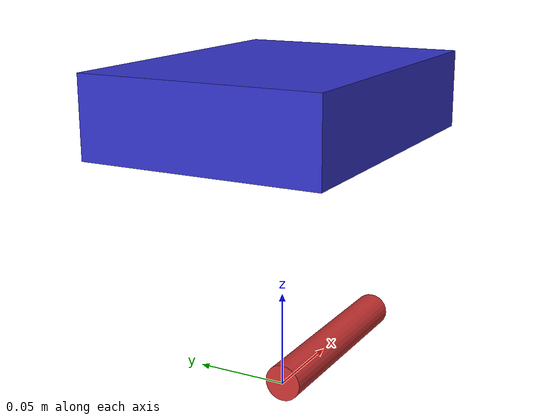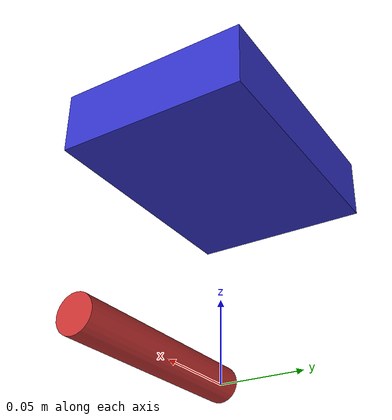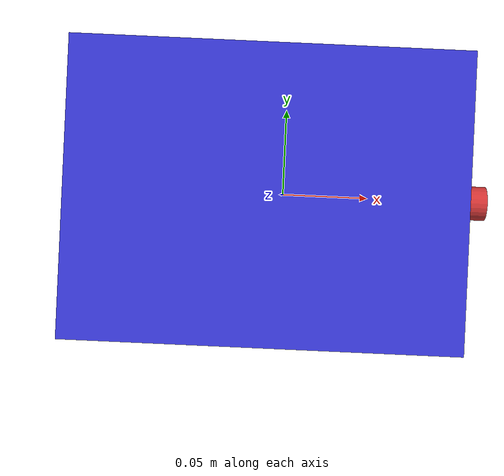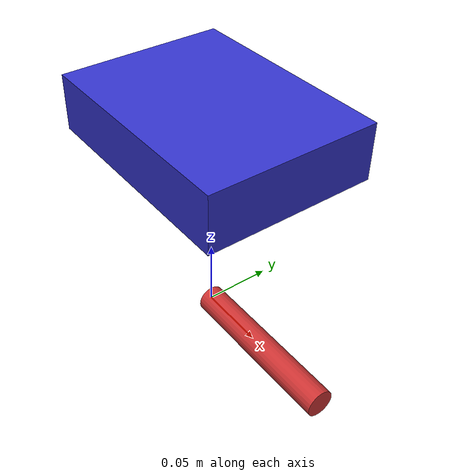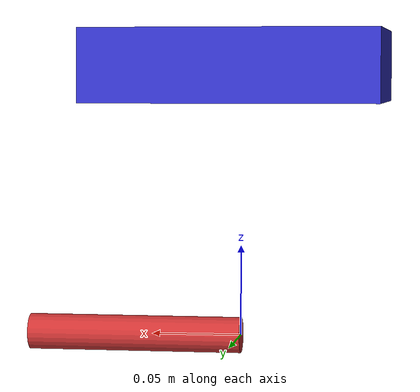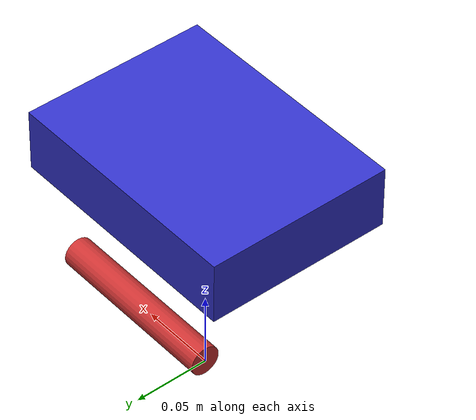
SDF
<?xml version="1.0" ?>
<sdf version="1.6">
  <model name="hexapod">
    <!-- Main body -->
    <link name="body">
      <pose>0 0 0.15 0 0 0</pose>
      <inertial>
        <mass>2.0</mass>
        <inertia>
          <ixx>0.1</ixx>
          <iyy>0.1</iyy>
          <izz>0.1</izz>
        </inertia>
      </inertial>
      <visual name="body_visual">
        <geometry>
          <box>
            <size>0.16 0.12 0.04</size>
          </box>
        </geometry>
        <material>
          <ambient>0.2 0.2 0.8 1</ambient>
          <diffuse>0.2 0.2 0.8 1</diffuse>
        </material>
      </visual>
      <collision name="body_collision">
        <geometry>
          <box>
            <size>0.16 0.12 0.04</size>
          </box>
        </geometry>
      </collision>
    </link>

    <!-- Simple single-segment legs for visibility testing -->
    <!-- Front Right Leg -->
    <link name="front_right_leg">
      <pose>0 0 0 0 0 0</pose>
      <inertial>
        <mass>0.2</mass>
        <inertia>
          <ixx>0.002</ixx>
          <iyy>0.002</iyy>
          <izz>0.002</izz>
        </inertia>
      </inertial>
      <visual name="leg_visual">
        <pose>0.06 0 0 0 1.57 0</pose>  <!-- Leg extends horizontally outward -->
        <geometry>
          <cylinder>
            <radius>0.01</radius>
            <length>0.12</length>
          </cylinder>
        </geometry>
        <material>
          <ambient>0.8 0.2 0.2 1</ambient>
          <diffuse>0.8 0.2 0.2 1</diffuse>
        </material>
      </visual>
    </link>

    <joint name="front_right_joint" type="revolute">
      <parent>body</parent>
      <child>front_right_leg</child>
      <pose>0.08 -0.06 -0.02 0 0 0</pose>  <!-- Joint at bottom of body -->
      <axis>
        <xyz>0 1 0</xyz>
        <limit>
          <lower>-1.57</lower>
          <upper>1.57</upper>
        </limit>
      </axis>
    </joint>

    <!-- Middle Right Leg -->
    <link name="middle_right_leg">
      <pose>0 0 0 0 0 0</pose>
      <inertial>
        <mass>0.2</mass>
        <inertia>
          <ixx>0.002</ixx>
          <iyy>0.002</iyy>
          <izz>0.002</izz>
        </inertia>
      </inertial>
      <visual name="leg_visual">
        <pose>0.06 0 0 0 1.57 0</pose>  <!-- Horizontal leg -->
        <geometry>
          <cylinder>
            <radius>0.01</radius>
            <length>0.12</length>
          </cylinder>
        </geometry>
        <material>
          <ambient>0.8 0.2 0.2 1</ambient>
          <diffuse>0.8 0.2 0.2 1</diffuse>
        </material>
      </visual>
    </link>

    <joint name="middle_right_joint" type="revolute">
      <parent>body</parent>
      <child>middle_right_leg</child>
      <pose>0 -0.08 -0.02 0 0 0</pose>
      <axis>
        <xyz>0 1 0</xyz>
        <limit>
          <lower>-1.57</lower>
          <upper>1.57</upper>
        </limit>
      </axis>
    </joint>

    <!-- Rear Right Leg -->
    <link name="rear_right_leg">
      <pose>0 0 0 0 0 0</pose>
      <inertial>
        <mass>0.2</mass>
        <inertia>
          <ixx>0.002</ixx>
          <iyy>0.002</iyy>
          <izz>0.002</izz>
        </inertia>
      </inertial>
      <visual name="leg_visual">
        <pose>0.06 0 0 0 1.57 0</pose>  <!-- Horizontal leg -->
        <geometry>
          <cylinder>
            <radius>0.01</radius>
            <length>0.12</length>
          </cylinder>
        </geometry>
        <material>
          <ambient>0.8 0.2 0.2 1</ambient>
          <diffuse>0.8 0.2 0.2 1</diffuse>
        </material>
      </visual>
    </link>

    <joint name="rear_right_joint" type="revolute">
      <parent>body</parent>
      <child>rear_right_leg</child>
      <pose>-0.08 -0.06 -0.02 0 0 0</pose>
      <axis>
        <xyz>0 1 0</xyz>
        <limit>
          <lower>-1.57</lower>
          <upper>1.57</upper>
        </limit>
      </axis>
    </joint>

    <!-- Front Left Leg -->
    <link name="front_left_leg">
      <pose>0 0 0 0 0 0</pose>
      <inertial>
        <mass>0.2</mass>
        <inertia>
          <ixx>0.002</ixx>
          <iyy>0.002</iyy>
          <izz>0.002</izz>
        </inertia>
      </inertial>
      <visual name="leg_visual">
        <pose>0.06 0 0 0 1.57 0</pose>  <!-- Horizontal leg -->
        <geometry>
          <cylinder>
            <radius>0.01</radius>
            <length>0.12</length>
          </cylinder>
        </geometry>
        <material>
          <ambient>0.2 0.8 0.2 1</ambient>
          <diffuse>0.2 0.8 0.2 1</diffuse>
        </material>
      </visual>
    </link>

    <joint name="front_left_joint" type="revolute">
      <parent>body</parent>
      <child>front_left_leg</child>
      <pose>0.08 0.06 -0.02 0 0 0</pose>
      <axis>
        <xyz>0 1 0</xyz>
        <limit>
          <lower>-1.57</lower>
          <upper>1.57</upper>
        </limit>
      </axis>
    </joint>

    <!-- Middle Left Leg -->
    <link name="middle_left_leg">
      <pose>0 0 0 0 0 0</pose>
      <inertial>
        <mass>0.2</mass>
        <inertia>
          <ixx>0.002</ixx>
          <iyy>0.002</iyy>
          <izz>0.002</izz>
        </inertia>
      </inertial>
      <visual name="leg_visual">
        <pose>0.06 0 0 0 1.57 0</pose>  <!-- Horizontal leg -->
        <geometry>
          <cylinder>
            <radius>0.01</radius>
            <length>0.12</length>
          </cylinder>
        </geometry>
        <material>
          <ambient>0.2 0.8 0.2 1</ambient>
          <diffuse>0.2 0.8 0.2 1</diffuse>
        </material>
      </visual>
    </link>

    <joint name="middle_left_joint" type="revolute">
      <parent>body</parent>
      <child>middle_left_leg</child>
      <pose>0 0.08 -0.02 0 0 0</pose>
      <axis>
        <xyz>0 1 0</xyz>
        <limit>
          <lower>-1.57</lower>
          <upper>1.57</upper>
        </limit>
      </axis>
    </joint>

    <!-- Rear Left Leg -->
    <link name="rear_left_leg">
      <pose>0 0 0 0 0 0</pose>
      <inertial>
        <mass>0.2</mass>
        <inertia>
          <ixx>0.002</ixx>
          <iyy>0.002</iyy>
          <izz>0.002</izz>
        </inertia>
      </inertial>
      <visual name="leg_visual">
        <pose>0.06 0 0 0 1.57 0</pose>  <!-- Horizontal leg -->
        <geometry>
          <cylinder>
            <radius>0.01</radius>
            <length>0.12</length>
          </cylinder>
        </geometry>
        <material>
          <ambient>0.2 0.8 0.2 1</ambient>
          <diffuse>0.2 0.8 0.2 1</diffuse>
        </material>
      </visual>
    </link>

    <joint name="rear_left_joint" type="revolute">
      <parent>body</parent>
      <child>rear_left_leg</child>
      <pose>-0.08 0.06 -0.02 0 0 0</pose>
      <axis>
        <xyz>0 1 0</xyz>
        <limit>
          <lower>-1.57</lower>
          <upper>1.57</upper>
        </limit>
      </axis>
    </joint>

    <!-- ArduPilot Plugin for servo control (6 servos for simple legs) -->
    <plugin filename="gz-sim-ardupilot-plugin-system" name="gz::sim::systems::ArduPilotPlugin">
      <fdm_addr>127.0.0.1</fdm_addr>
      <fdm_port_in>9002</fdm_port_in>
      <fdm_port_out>9003</fdm_port_out>
      <modelXYZToAirplaneXForwardZDown>0 0 0 3.141592653589793 0 0</modelXYZToAirplaneXForwardZDown>
      <gazeboXYZToNED>0 0 0 3.141592653589793 0 0</gazeboXYZToNED>

      <!-- Simple leg servos -->
      <control channel="0">
        <jointName>front_right_joint</jointName>
        <servo_min>1000</servo_min>
        <servo_max>2000</servo_max>
        <type>POSITION</type>
        <p_gain>10.0</p_gain>
        <i_gain>0</i_gain>
        <d_gain>0</d_gain>
        <i_max>0</i_max>
        <i_min>0</i_min>
        <cmd_max>2.0</cmd_max>
        <cmd_min>-2.0</cmd_min>
      </control>

      <control channel="1">
        <jointName>middle_right_joint</jointName>
        <servo_min>1000</servo_min>
        <servo_max>2000</servo_max>
        <type>POSITION</type>
        <p_gain>10.0</p_gain>
        <i_gain>0</i_gain>
        <d_gain>0</d_gain>
        <i_max>0</i_max>
        <i_min>0</i_min>
        <cmd_max>2.0</cmd_max>
        <cmd_min>-2.0</cmd_min>
      </control>

      <control channel="2">
        <jointName>rear_right_joint</jointName>
        <servo_min>1000</servo_min>
        <servo_max>2000</servo_max>
        <type>POSITION</type>
        <p_gain>10.0</p_gain>
        <i_gain>0</i_gain>
        <d_gain>0</d_gain>
        <i_max>0</i_max>
        <i_min>0</i_min>
        <cmd_max>2.0</cmd_max>
        <cmd_min>-2.0</cmd_min>
      </control>

      <control channel="3">
        <jointName>front_left_joint</jointName>
        <servo_min>1000</servo_min>
        <servo_max>2000</servo_max>
        <type>POSITION</type>
        <p_gain>10.0</p_gain>
        <i_gain>0</i_gain>
        <d_gain>0</d_gain>
        <i_max>0</i_max>
        <i_min>0</i_min>
        <cmd_max>2.0</cmd_max>
        <cmd_min>-2.0</cmd_min>
      </control>

      <control channel="4">
        <jointName>middle_left_joint</jointName>
        <servo_min>1000</servo_min>
        <servo_max>2000</servo_max>
        <type>POSITION</type>
        <p_gain>10.0</p_gain>
        <i_gain>0</i_gain>
        <d_gain>0</d_gain>
        <i_max>0</i_max>
        <i_min>0</i_min>
        <cmd_max>2.0</cmd_max>
        <cmd_min>-2.0</cmd_min>
      </control>

      <control channel="5">
        <jointName>rear_left_joint</jointName>
        <servo_min>1000</servo_min>
        <servo_max>2000</servo_max>
        <type>POSITION</type>
        <p_gain>10.0</p_gain>
        <i_gain>0</i_gain>
        <d_gain>0</d_gain>
        <i_max>0</i_max>
        <i_min>0</i_min>
        <cmd_max>2.0</cmd_max>
        <cmd_min>-2.0</cmd_min>
      </control>
    </plugin>

  </model>
</sdf>
